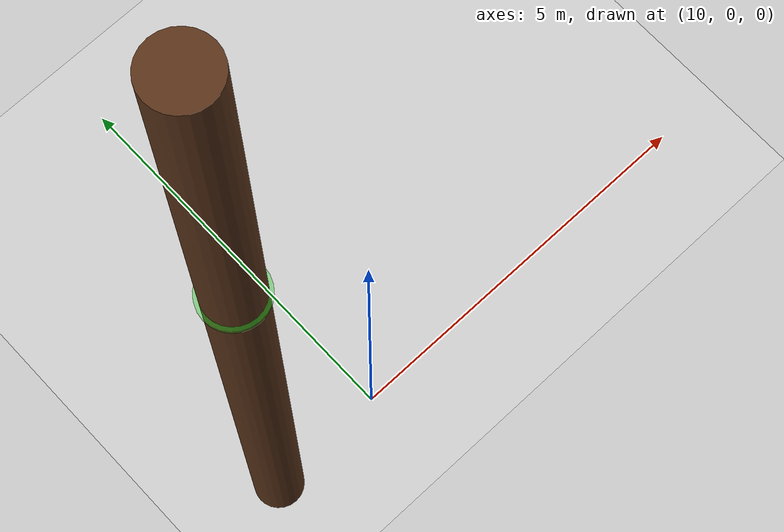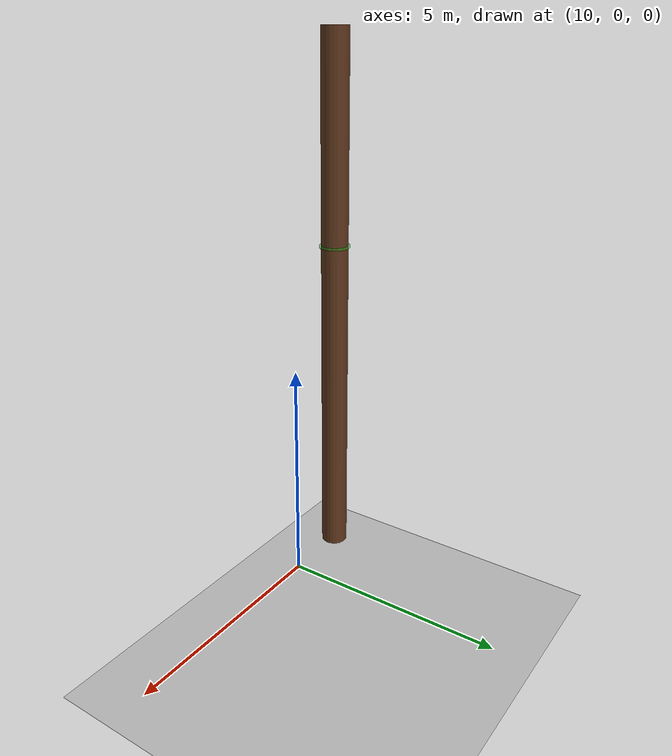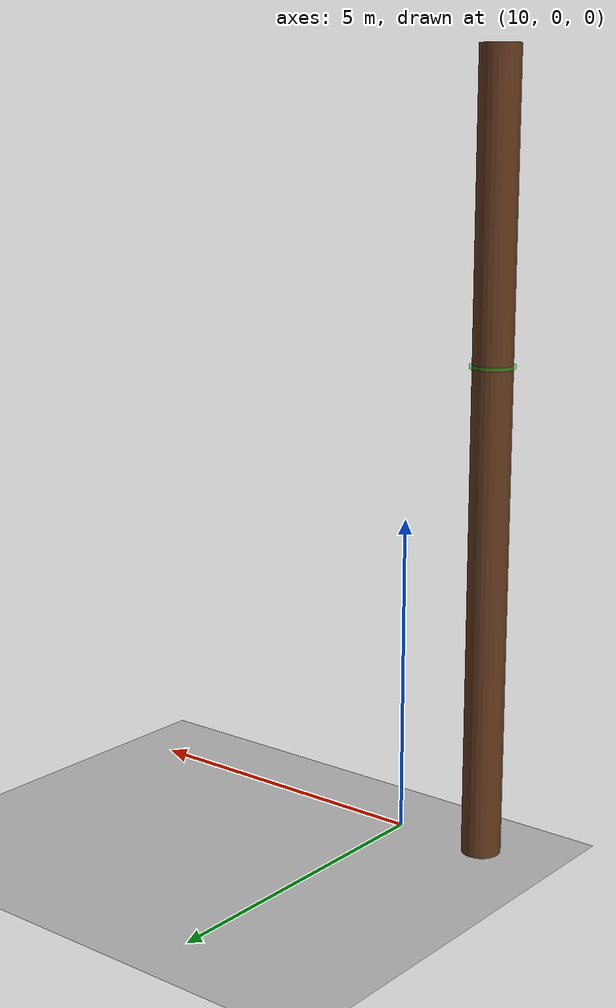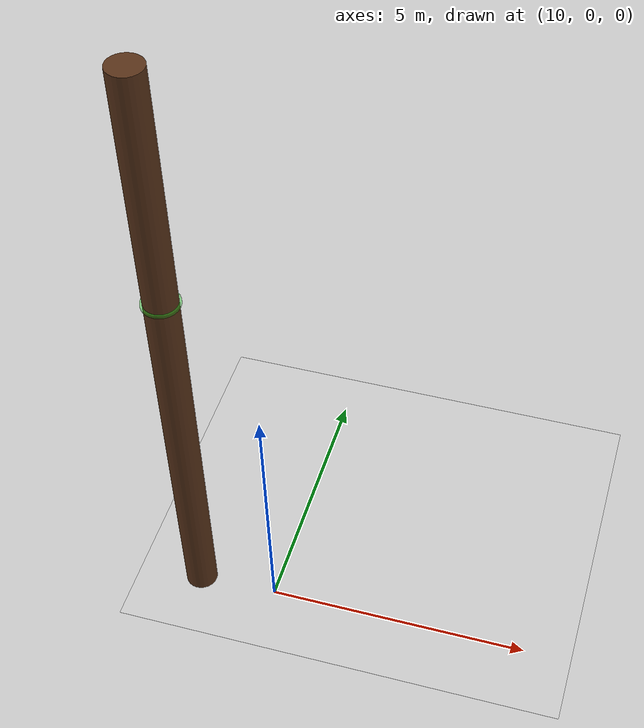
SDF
<?xml version="1.0"?>
<sdf version="1.6">
  <world name="oil_palm_docking">
    <include><uri>model://sun</uri></include>
    <include><uri>model://ground_plane</uri></include>
    <model name="oil_palm_trunk">
      <static>true</static>
      <pose>8.5 0 6.0 0 0 0</pose>
      <link name="trunk_link">
        <collision name="collision"><geometry><cylinder><radius>0.30</radius><length>12.0</length></cylinder></geometry></collision>
        <visual name="visual"><geometry><cylinder><radius>0.30</radius><length>12.0</length></cylinder></geometry>
          <material><ambient>0.28 0.16 0.08 1</ambient><diffuse>0.35 0.20 0.10 1</diffuse></material></visual>
      </link>
    </model>
    <model name="docking_zone_marker">
      <static>true</static>
      <pose>8.5 0 7.5 0 0 0</pose>
      <link name="marker_link">
        <visual name="visual"><geometry><cylinder><radius>0.34</radius><length>0.05</length></cylinder></geometry>
          <material><ambient>0.1 0.8 0.1 0.4</ambient><diffuse>0.1 0.8 0.1 0.4</diffuse></material></visual>
      </link>
    </model>
  </world>
</sdf>
